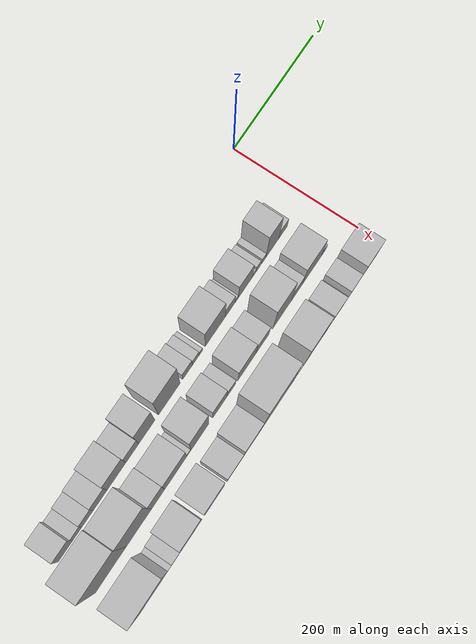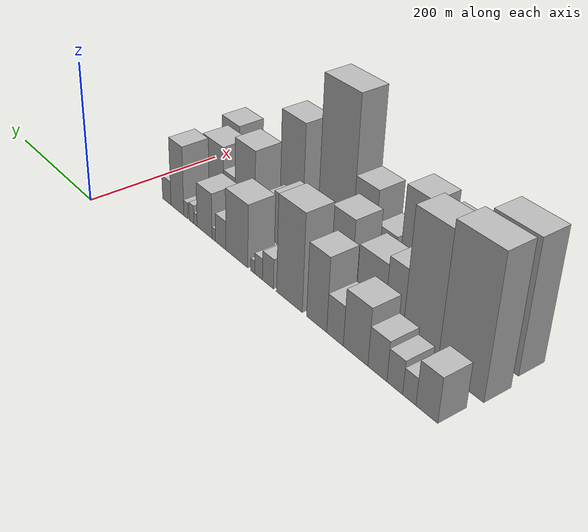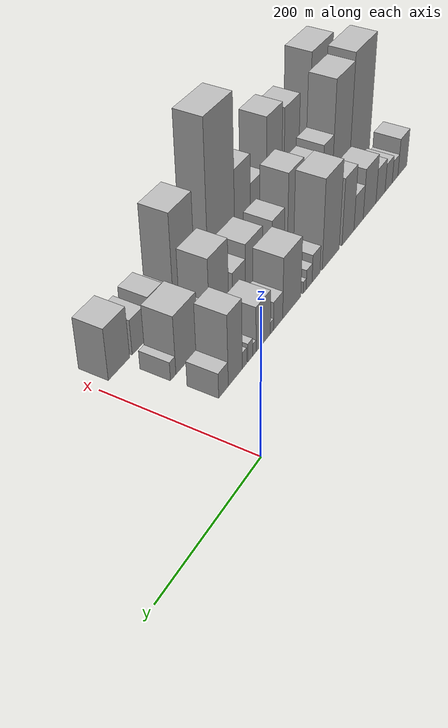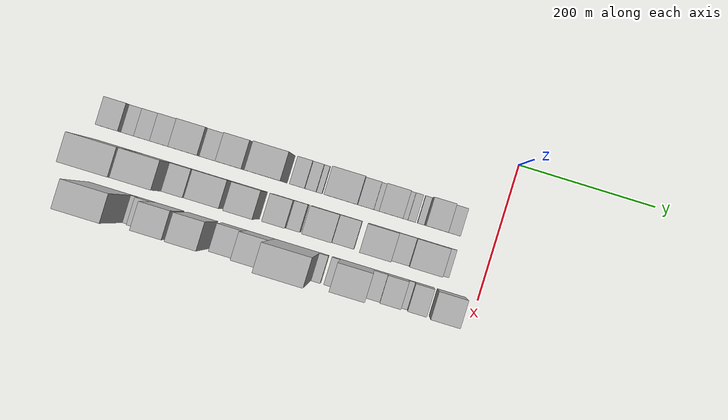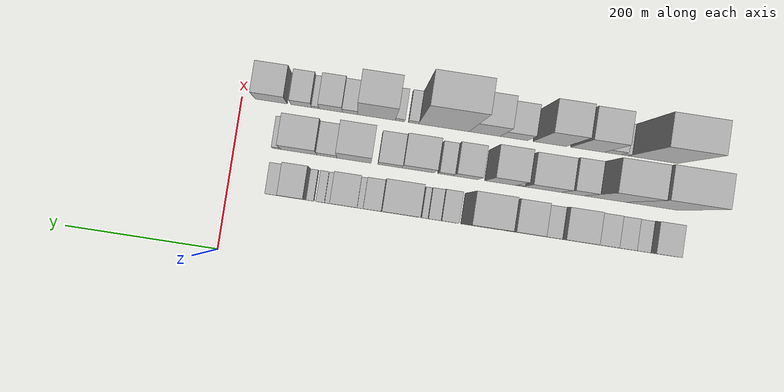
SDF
<sdf version="1.6">
 <world name="default">
  <model name="building_1">
   <static>1</static>
   <pose>100.0000 -558.9998 0 0.000000 0.000000 0.000000</pose>
   <link name="link">
    <pose>0 0 30.00 0 0 0</pose>
    <collision name="collision"><geometry><box><size>40.0000 32.0005 60.0000</size></box></geometry></collision>
    <visual name="visual">
     <cast_shadows>0</cast_shadows>
     <geometry><box><size>40.0000 32.0005 60.0000</size></box></geometry>
     <material>
      <script>
       <uri>model://HANNAS_wall/materials/scripts</uri>
       <uri>model://HANNAS_wall/materials/textures</uri>
       <name>vrc/HANNAS_wall</name>
      </script>
     </material>
    </visual>
   </link>
  </model>
  <model name="building_2">
   <static>1</static>
   <pose>100.0000 -533.0357 0 0.000000 0.000000 0.000000</pose>
   <link name="link">
    <pose>0 0 18.00 0 0 0</pose>
    <collision name="collision"><geometry><box><size>40.0000 19.9277 36.0000</size></box></geometry></collision>
    <visual name="visual">
     <cast_shadows>0</cast_shadows>
     <geometry><box><size>40.0000 19.9277 36.0000</size></box></geometry>
     <material>
      <script>
       <uri>model://HANNAS_wall/materials/scripts</uri>
       <uri>model://HANNAS_wall/materials/textures</uri>
       <name>vrc/HANNAS_wall</name>
      </script>
     </material>
    </visual>
   </link>
  </model>
  <model name="building_3">
   <static>1</static>
   <pose>100.0000 -510.8736 0 0.000000 0.000000 0.000000</pose>
   <link name="link">
    <pose>0 0 22.50 0 0 0</pose>
    <collision name="collision"><geometry><box><size>40.0000 24.3965 45.0000</size></box></geometry></collision>
    <visual name="visual">
     <cast_shadows>0</cast_shadows>
     <geometry><box><size>40.0000 24.3965 45.0000</size></box></geometry>
     <material>
      <script>
       <uri>model://HANNAS_wall/materials/scripts</uri>
       <uri>model://HANNAS_wall/materials/textures</uri>
       <name>vrc/HANNAS_wall</name>
      </script>
     </material>
    </visual>
   </link>
  </model>
  <model name="building_4">
   <static>1</static>
   <pose>100.0000 -483.5138 0 0.000000 0.000000 0.000000</pose>
   <link name="link">
    <pose>0 0 27.00 0 0 0</pose>
    <collision name="collision"><geometry><box><size>40.0000 30.3230 54.0000</size></box></geometry></collision>
    <visual name="visual">
     <cast_shadows>0</cast_shadows>
     <geometry><box><size>40.0000 30.3230 54.0000</size></box></geometry>
     <material>
      <script>
       <uri>model://HANNAS_wall/materials/scripts</uri>
       <uri>model://HANNAS_wall/materials/textures</uri>
       <name>vrc/HANNAS_wall</name>
      </script>
     </material>
    </visual>
   </link>
  </model>
  <model name="building_5">
   <static>1</static>
   <pose>100.0000 -447.7967 0 0.000000 0.000000 0.000000</pose>
   <link name="link">
    <pose>0 0 39.00 0 0 0</pose>
    <collision name="collision"><geometry><box><size>40.0000 41.1111 78.0000</size></box></geometry></collision>
    <visual name="visual">
     <cast_shadows>0</cast_shadows>
     <geometry><box><size>40.0000 41.1111 78.0000</size></box></geometry>
     <material>
      <script>
       <uri>model://HANNAS_wall/materials/scripts</uri>
       <uri>model://HANNAS_wall/materials/textures</uri>
       <name>vrc/HANNAS_wall</name>
      </script>
     </material>
    </visual>
   </link>
  </model>
  <model name="building_6">
   <static>1</static>
   <pose>100.0000 -412.8341 0 0.000000 0.000000 0.000000</pose>
   <link name="link">
    <pose>0 0 27.00 0 0 0</pose>
    <collision name="collision"><geometry><box><size>40.0000 28.8142 54.0000</size></box></geometry></collision>
    <visual name="visual">
     <cast_shadows>0</cast_shadows>
     <geometry><box><size>40.0000 28.8142 54.0000</size></box></geometry>
     <material>
      <script>
       <uri>model://HANNAS_wall/materials/scripts</uri>
       <uri>model://HANNAS_wall/materials/textures</uri>
       <name>vrc/HANNAS_wall</name>
      </script>
     </material>
    </visual>
   </link>
  </model>
  <model name="building_7">
   <static>1</static>
   <pose>100.0000 -380.3143 0 0.000000 0.000000 0.000000</pose>
   <link name="link">
    <pose>0 0 51.00 0 0 0</pose>
    <collision name="collision"><geometry><box><size>40.0000 36.2254 102.0000</size></box></geometry></collision>
    <visual name="visual">
     <cast_shadows>0</cast_shadows>
     <geometry><box><size>40.0000 36.2254 102.0000</size></box></geometry>
     <material>
      <script>
       <uri>model://HANNAS_wall/materials/scripts</uri>
       <uri>model://HANNAS_wall/materials/textures</uri>
       <name>vrc/HANNAS_wall</name>
      </script>
     </material>
    </visual>
   </link>
  </model>
  <model name="building_8">
   <static>1</static>
   <pose>100.0000 -329.6145 0 0.000000 0.000000 0.000000</pose>
   <link name="link">
    <pose>0 0 67.50 0 0 0</pose>
    <collision name="collision"><geometry><box><size>40.0000 49.1742 135.0000</size></box></geometry></collision>
    <visual name="visual">
     <cast_shadows>0</cast_shadows>
     <geometry><box><size>40.0000 49.1742 135.0000</size></box></geometry>
     <material>
      <script>
       <uri>model://HANNAS_wall/materials/scripts</uri>
       <uri>model://HANNAS_wall/materials/textures</uri>
       <name>vrc/HANNAS_wall</name>
      </script>
     </material>
    </visual>
   </link>
  </model>
  <model name="building_9">
   <static>1</static>
   <pose>100.0000 -288.0605 0 0.000000 0.000000 0.000000</pose>
   <link name="link">
    <pose>0 0 21.00 0 0 0</pose>
    <collision name="collision"><geometry><box><size>40.0000 21.9337 42.0000</size></box></geometry></collision>
    <visual name="visual">
     <cast_shadows>0</cast_shadows>
     <geometry><box><size>40.0000 21.9337 42.0000</size></box></geometry>
     <material>
      <script>
       <uri>model://HANNAS_wall/materials/scripts</uri>
       <uri>model://HANNAS_wall/materials/textures</uri>
       <name>vrc/HANNAS_wall</name>
      </script>
     </material>
    </visual>
   </link>
  </model>
  <model name="building_10">
   <static>1</static>
   <pose>100.0000 -269.0830 0 0.000000 0.000000 0.000000</pose>
   <link name="link">
    <pose>0 0 15.00 0 0 0</pose>
    <collision name="collision"><geometry><box><size>40.0000 16.0212 30.0000</size></box></geometry></collision>
    <visual name="visual">
     <cast_shadows>0</cast_shadows>
     <geometry><box><size>40.0000 16.0212 30.0000</size></box></geometry>
     <material>
      <script>
       <uri>model://HANNAS_wall/materials/scripts</uri>
       <uri>model://HANNAS_wall/materials/textures</uri>
       <name>vrc/HANNAS_wall</name>
      </script>
     </material>
    </visual>
   </link>
  </model>
  <model name="building_11">
   <static>1</static>
   <pose>100.0000 -257.0660 0 0.000000 0.000000 0.000000</pose>
   <link name="link">
    <pose>0 0 9.00 0 0 0</pose>
    <collision name="collision"><geometry><box><size>40.0000 8.0128 18.0000</size></box></geometry></collision>
    <visual name="visual">
     <cast_shadows>0</cast_shadows>
     <geometry><box><size>40.0000 8.0128 18.0000</size></box></geometry>
     <material>
      <script>
       <uri>model://HANNAS_wall/materials/scripts</uri>
       <uri>model://HANNAS_wall/materials/textures</uri>
       <name>vrc/HANNAS_wall</name>
      </script>
     </material>
    </visual>
   </link>
  </model>
  <model name="building_12">
   <static>1</static>
   <pose>100.0000 -223.5987 0 0.000000 0.000000 0.000000</pose>
   <link name="link">
    <pose>0 0 45.00 0 0 0</pose>
    <collision name="collision"><geometry><box><size>40.0000 46.9219 90.0000</size></box></geometry></collision>
    <visual name="visual">
     <cast_shadows>0</cast_shadows>
     <geometry><box><size>40.0000 46.9219 90.0000</size></box></geometry>
     <material>
      <script>
       <uri>model://HANNAS_wall/materials/scripts</uri>
       <uri>model://HANNAS_wall/materials/textures</uri>
       <name>vrc/HANNAS_wall</name>
      </script>
     </material>
    </visual>
   </link>
  </model>
  <model name="building_13">
   <static>1</static>
   <pose>100.0000 -188.6355 0 0.000000 0.000000 0.000000</pose>
   <link name="link">
    <pose>0 0 21.00 0 0 0</pose>
    <collision name="collision"><geometry><box><size>40.0000 23.0045 42.0000</size></box></geometry></collision>
    <visual name="visual">
     <cast_shadows>0</cast_shadows>
     <geometry><box><size>40.0000 23.0045 42.0000</size></box></geometry>
     <material>
      <script>
       <uri>model://HANNAS_wall/materials/scripts</uri>
       <uri>model://HANNAS_wall/materials/textures</uri>
       <name>vrc/HANNAS_wall</name>
      </script>
     </material>
    </visual>
   </link>
  </model>
  <model name="building_14">
   <static>1</static>
   <pose>100.0000 -173.3372 0 0.000000 0.000000 0.000000</pose>
   <link name="link">
    <pose>0 0 9.00 0 0 0</pose>
    <collision name="collision"><geometry><box><size>40.0000 7.5920 18.0000</size></box></geometry></collision>
    <visual name="visual">
     <cast_shadows>0</cast_shadows>
     <geometry><box><size>40.0000 7.5920 18.0000</size></box></geometry>
     <material>
      <script>
       <uri>model://HANNAS_wall/materials/scripts</uri>
       <uri>model://HANNAS_wall/materials/textures</uri>
       <name>vrc/HANNAS_wall</name>
      </script>
     </material>
    </visual>
   </link>
  </model>
  <model name="building_15">
   <static>1</static>
   <pose>100.0000 -152.3897 0 0.000000 0.000000 0.000000</pose>
   <link name="link">
    <pose>0 0 33.00 0 0 0</pose>
    <collision name="collision"><geometry><box><size>40.0000 34.3029 66.0000</size></box></geometry></collision>
    <visual name="visual">
     <cast_shadows>0</cast_shadows>
     <geometry><box><size>40.0000 34.3029 66.0000</size></box></geometry>
     <material>
      <script>
       <uri>model://HANNAS_wall/materials/scripts</uri>
       <uri>model://HANNAS_wall/materials/textures</uri>
       <name>vrc/HANNAS_wall</name>
      </script>
     </material>
    </visual>
   </link>
  </model>
  <model name="building_16">
   <static>1</static>
   <pose>100.0000 -131.3970 0 0.000000 0.000000 0.000000</pose>
   <link name="link">
    <pose>0 0 9.00 0 0 0</pose>
    <collision name="collision"><geometry><box><size>40.0000 7.6826 18.0000</size></box></geometry></collision>
    <visual name="visual">
     <cast_shadows>0</cast_shadows>
     <geometry><box><size>40.0000 7.6826 18.0000</size></box></geometry>
     <material>
      <script>
       <uri>model://HANNAS_wall/materials/scripts</uri>
       <uri>model://HANNAS_wall/materials/textures</uri>
       <name>vrc/HANNAS_wall</name>
      </script>
     </material>
    </visual>
   </link>
  </model>
  <model name="building_17">
   <static>1</static>
   <pose>100.0000 -121.9993 0 0.000000 0.000000 0.000000</pose>
   <link name="link">
    <pose>0 0 13.50 0 0 0</pose>
    <collision name="collision"><geometry><box><size>40.0000 11.1128 27.0000</size></box></geometry></collision>
    <visual name="visual">
     <cast_shadows>0</cast_shadows>
     <geometry><box><size>40.0000 11.1128 27.0000</size></box></geometry>
     <material>
      <script>
       <uri>model://HANNAS_wall/materials/scripts</uri>
       <uri>model://HANNAS_wall/materials/textures</uri>
       <name>vrc/HANNAS_wall</name>
      </script>
     </material>
    </visual>
   </link>
  </model>
  <model name="building_18">
   <static>1</static>
   <pose>100.0000 -108.5915 0 0.000000 0.000000 0.000000</pose>
   <link name="link">
    <pose>0 0 12.00 0 0 0</pose>
    <collision name="collision"><geometry><box><size>40.0000 9.7029 24.0000</size></box></geometry></collision>
    <visual name="visual">
     <cast_shadows>0</cast_shadows>
     <geometry><box><size>40.0000 9.7029 24.0000</size></box></geometry>
     <material>
      <script>
       <uri>model://HANNAS_wall/materials/scripts</uri>
       <uri>model://HANNAS_wall/materials/textures</uri>
       <name>vrc/HANNAS_wall</name>
      </script>
     </material>
    </visual>
   </link>
  </model>
  <model name="building_19">
   <static>1</static>
   <pose>100.0000 -88.0765 0 0.000000 0.000000 0.000000</pose>
   <link name="link">
    <pose>0 0 51.00 0 0 0</pose>
    <collision name="collision"><geometry><box><size>40.0000 31.3270 102.0000</size></box></geometry></collision>
    <visual name="visual">
     <cast_shadows>0</cast_shadows>
     <geometry><box><size>40.0000 31.3270 102.0000</size></box></geometry>
     <material>
      <script>
       <uri>model://HANNAS_wall/materials/scripts</uri>
       <uri>model://HANNAS_wall/materials/textures</uri>
       <name>vrc/HANNAS_wall</name>
      </script>
     </material>
    </visual>
   </link>
  </model>
  <model name="building_20">
   <static>1</static>
   <pose>100.0000 -62.0371 0 0.000000 0.000000 0.000000</pose>
   <link name="link">
    <pose>0 0 18.00 0 0 0</pose>
    <collision name="collision"><geometry><box><size>40.0000 20.7519 36.0000</size></box></geometry></collision>
    <visual name="visual">
     <cast_shadows>0</cast_shadows>
     <geometry><box><size>40.0000 20.7519 36.0000</size></box></geometry>
     <material>
      <script>
       <uri>model://HANNAS_wall/materials/scripts</uri>
       <uri>model://HANNAS_wall/materials/textures</uri>
       <name>vrc/HANNAS_wall</name>
      </script>
     </material>
    </visual>
   </link>
  </model>
  <model name="building_36">
   <static>1</static>
   <pose>160.0000 -546.0271 0 0.000000 0.000000 0.000000</pose>
   <link name="link">
    <pose>0 0 94.50 0 0 0</pose>
    <collision name="collision"><geometry><box><size>40.0000 67.9459 189.0000</size></box></geometry></collision>
    <visual name="visual">
     <cast_shadows>0</cast_shadows>
     <geometry><box><size>40.0000 67.9459 189.0000</size></box></geometry>
     <material>
      <script>
       <uri>model://HANNAS_wall/materials/scripts</uri>
       <uri>model://HANNAS_wall/materials/textures</uri>
       <name>vrc/HANNAS_wall</name>
      </script>
     </material>
    </visual>
   </link>
  </model>
  <model name="building_37">
   <static>1</static>
   <pose>160.0000 -484.2966 0 0.000000 0.000000 0.000000</pose>
   <link name="link">
    <pose>0 0 88.50 0 0 0</pose>
    <collision name="collision"><geometry><box><size>40.0000 55.5150 177.0000</size></box></geometry></collision>
    <visual name="visual">
     <cast_shadows>0</cast_shadows>
     <geometry><box><size>40.0000 55.5150 177.0000</size></box></geometry>
     <material>
      <script>
       <uri>model://HANNAS_wall/materials/scripts</uri>
       <uri>model://HANNAS_wall/materials/textures</uri>
       <name>vrc/HANNAS_wall</name>
      </script>
     </material>
    </visual>
   </link>
  </model>
  <model name="building_38">
   <static>1</static>
   <pose>160.0000 -441.6008 0 0.000000 0.000000 0.000000</pose>
   <link name="link">
    <pose>0 0 48.00 0 0 0</pose>
    <collision name="collision"><geometry><box><size>40.0000 29.8766 96.0000</size></box></geometry></collision>
    <visual name="visual">
     <cast_shadows>0</cast_shadows>
     <geometry><box><size>40.0000 29.8766 96.0000</size></box></geometry>
     <material>
      <script>
       <uri>model://HANNAS_wall/materials/scripts</uri>
       <uri>model://HANNAS_wall/materials/textures</uri>
       <name>vrc/HANNAS_wall</name>
      </script>
     </material>
    </visual>
   </link>
  </model>
  <model name="building_39">
   <static>1</static>
   <pose>160.0000 -402.0864 0 0.000000 0.000000 0.000000</pose>
   <link name="link">
    <pose>0 0 42.00 0 0 0</pose>
    <collision name="collision"><geometry><box><size>40.0000 49.1523 84.0000</size></box></geometry></collision>
    <visual name="visual">
     <cast_shadows>0</cast_shadows>
     <geometry><box><size>40.0000 49.1523 84.0000</size></box></geometry>
     <material>
      <script>
       <uri>model://HANNAS_wall/materials/scripts</uri>
       <uri>model://HANNAS_wall/materials/textures</uri>
       <name>vrc/HANNAS_wall</name>
      </script>
     </material>
    </visual>
   </link>
  </model>
  <model name="building_40">
   <static>1</static>
   <pose>160.0000 -372.9506 0 0.000000 0.000000 0.000000</pose>
   <link name="link">
    <pose>0 0 10.50 0 0 0</pose>
    <collision name="collision"><geometry><box><size>40.0000 9.1191 21.0000</size></box></geometry></collision>
    <visual name="visual">
     <cast_shadows>0</cast_shadows>
     <geometry><box><size>40.0000 9.1191 21.0000</size></box></geometry>
     <material>
      <script>
       <uri>model://HANNAS_wall/materials/scripts</uri>
       <uri>model://HANNAS_wall/materials/textures</uri>
       <name>vrc/HANNAS_wall</name>
      </script>
     </material>
    </visual>
   </link>
  </model>
  <model name="building_41">
   <static>1</static>
   <pose>160.0000 -347.9880 0 0.000000 0.000000 0.000000</pose>
   <link name="link">
    <pose>0 0 55.50 0 0 0</pose>
    <collision name="collision"><geometry><box><size>40.0000 40.8061 111.0000</size></box></geometry></collision>
    <visual name="visual">
     <cast_shadows>0</cast_shadows>
     <geometry><box><size>40.0000 40.8061 111.0000</size></box></geometry>
     <material>
      <script>
       <uri>model://HANNAS_wall/materials/scripts</uri>
       <uri>model://HANNAS_wall/materials/textures</uri>
       <name>vrc/HANNAS_wall</name>
      </script>
     </material>
    </visual>
   </link>
  </model>
  <model name="building_42">
   <static>1</static>
   <pose>160.0000 -302.0766 0 0.000000 0.000000 0.000000</pose>
   <link name="link">
    <pose>0 0 33.00 0 0 0</pose>
    <collision name="collision"><geometry><box><size>40.0000 33.0168 66.0000</size></box></geometry></collision>
    <visual name="visual">
     <cast_shadows>0</cast_shadows>
     <geometry><box><size>40.0000 33.0168 66.0000</size></box></geometry>
     <material>
      <script>
       <uri>model://HANNAS_wall/materials/scripts</uri>
       <uri>model://HANNAS_wall/materials/textures</uri>
       <name>vrc/HANNAS_wall</name>
      </script>
     </material>
    </visual>
   </link>
  </model>
  <model name="building_43">
   <static>1</static>
   <pose>160.0000 -275.7800 0 0.000000 0.000000 0.000000</pose>
   <link name="link">
    <pose>0 0 19.50 0 0 0</pose>
    <collision name="collision"><geometry><box><size>40.0000 19.5763 39.0000</size></box></geometry></collision>
    <visual name="visual">
     <cast_shadows>0</cast_shadows>
     <geometry><box><size>40.0000 19.5763 39.0000</size></box></geometry>
     <material>
      <script>
       <uri>model://HANNAS_wall/materials/scripts</uri>
       <uri>model://HANNAS_wall/materials/textures</uri>
       <name>vrc/HANNAS_wall</name>
      </script>
     </material>
    </visual>
   </link>
  </model>
  <model name="building_44">
   <static>1</static>
   <pose>160.0000 -239.8060 0 0.000000 0.000000 0.000000</pose>
   <link name="link">
    <pose>0 0 37.50 0 0 0</pose>
    <collision name="collision"><geometry><box><size>40.0000 42.3719 75.0000</size></box></geometry></collision>
    <visual name="visual">
     <cast_shadows>0</cast_shadows>
     <geometry><box><size>40.0000 42.3719 75.0000</size></box></geometry>
     <material>
      <script>
       <uri>model://HANNAS_wall/materials/scripts</uri>
       <uri>model://HANNAS_wall/materials/textures</uri>
       <name>vrc/HANNAS_wall</name>
      </script>
     </material>
    </visual>
   </link>
  </model>
  <model name="building_45">
   <static>1</static>
   <pose>160.0000 -203.0431 0 0.000000 0.000000 0.000000</pose>
   <link name="link">
    <pose>0 0 27.00 0 0 0</pose>
    <collision name="collision"><geometry><box><size>40.0000 31.1538 54.0000</size></box></geometry></collision>
    <visual name="visual">
     <cast_shadows>0</cast_shadows>
     <geometry><box><size>40.0000 31.1538 54.0000</size></box></geometry>
     <material>
      <script>
       <uri>model://HANNAS_wall/materials/scripts</uri>
       <uri>model://HANNAS_wall/materials/textures</uri>
       <name>vrc/HANNAS_wall</name>
      </script>
     </material>
    </visual>
   </link>
  </model>
  <model name="building_46">
   <static>1</static>
   <pose>160.0000 -156.4165 0 0.000000 0.000000 0.000000</pose>
   <link name="link">
    <pose>0 0 55.50 0 0 0</pose>
    <collision name="collision"><geometry><box><size>40.0000 44.0994 111.0000</size></box></geometry></collision>
    <visual name="visual">
     <cast_shadows>0</cast_shadows>
     <geometry><box><size>40.0000 44.0994 111.0000</size></box></geometry>
     <material>
      <script>
       <uri>model://HANNAS_wall/materials/scripts</uri>
       <uri>model://HANNAS_wall/materials/textures</uri>
       <name>vrc/HANNAS_wall</name>
      </script>
     </material>
    </visual>
   </link>
  </model>
  <model name="building_47">
   <static>1</static>
   <pose>160.0000 -121.1956 0 0.000000 0.000000 0.000000</pose>
   <link name="link">
    <pose>0 0 25.50 0 0 0</pose>
    <collision name="collision"><geometry><box><size>40.0000 26.3425 51.0000</size></box></geometry></collision>
    <visual name="visual">
     <cast_shadows>0</cast_shadows>
     <geometry><box><size>40.0000 26.3425 51.0000</size></box></geometry>
     <material>
      <script>
       <uri>model://HANNAS_wall/materials/scripts</uri>
       <uri>model://HANNAS_wall/materials/textures</uri>
       <name>vrc/HANNAS_wall</name>
      </script>
     </material>
    </visual>
   </link>
  </model>
  <model name="building_48">
   <static>1</static>
   <pose>160.0000 -84.4922 0 0.000000 0.000000 0.000000</pose>
   <link name="link">
    <pose>0 0 42.00 0 0 0</pose>
    <collision name="collision"><geometry><box><size>40.0000 47.0642 84.0000</size></box></geometry></collision>
    <visual name="visual">
     <cast_shadows>0</cast_shadows>
     <geometry><box><size>40.0000 47.0642 84.0000</size></box></geometry>
     <material>
      <script>
       <uri>model://HANNAS_wall/materials/scripts</uri>
       <uri>model://HANNAS_wall/materials/textures</uri>
       <name>vrc/HANNAS_wall</name>
      </script>
     </material>
    </visual>
   </link>
  </model>
  <model name="building_49">
   <static>1</static>
   <pose>160.0000 -55.3131 0 0.000000 0.000000 0.000000</pose>
   <link name="link">
    <pose>0 0 13.50 0 0 0</pose>
    <collision name="collision"><geometry><box><size>40.0000 11.2942 27.0000</size></box></geometry></collision>
    <visual name="visual">
     <cast_shadows>0</cast_shadows>
     <geometry><box><size>40.0000 11.2942 27.0000</size></box></geometry>
     <material>
      <script>
       <uri>model://HANNAS_wall/materials/scripts</uri>
       <uri>model://HANNAS_wall/materials/textures</uri>
       <name>vrc/HANNAS_wall</name>
      </script>
     </material>
    </visual>
   </link>
  </model>
  <model name="building_67">
   <static>1</static>
   <pose>220.0000 -539.4985 0 0.000000 0.000000 0.000000</pose>
   <link name="link">
    <pose>0 0 88.50 0 0 0</pose>
    <collision name="collision"><geometry><box><size>40.0000 65.0030 177.0000</size></box></geometry></collision>
    <visual name="visual">
     <cast_shadows>0</cast_shadows>
     <geometry><box><size>40.0000 65.0030 177.0000</size></box></geometry>
     <material>
      <script>
       <uri>model://HANNAS_wall/materials/scripts</uri>
       <uri>model://HANNAS_wall/materials/textures</uri>
       <name>vrc/HANNAS_wall</name>
      </script>
     </material>
    </visual>
   </link>
  </model>
  <model name="building_68">
   <static>1</static>
   <pose>220.0000 -502.1473 0 0.000000 0.000000 0.000000</pose>
   <link name="link">
    <pose>0 0 10.50 0 0 0</pose>
    <collision name="collision"><geometry><box><size>40.0000 9.6995 21.0000</size></box></geometry></collision>
    <visual name="visual">
     <cast_shadows>0</cast_shadows>
     <geometry><box><size>40.0000 9.6995 21.0000</size></box></geometry>
     <material>
      <script>
       <uri>model://HANNAS_wall/materials/scripts</uri>
       <uri>model://HANNAS_wall/materials/textures</uri>
       <name>vrc/HANNAS_wall</name>
      </script>
     </material>
    </visual>
   </link>
  </model>
  <model name="building_69">
   <static>1</static>
   <pose>220.0000 -486.3223 0 0.000000 0.000000 0.000000</pose>
   <link name="link">
    <pose>0 0 21.00 0 0 0</pose>
    <collision name="collision"><geometry><box><size>40.0000 21.9504 42.0000</size></box></geometry></collision>
    <visual name="visual">
     <cast_shadows>0</cast_shadows>
     <geometry><box><size>40.0000 21.9504 42.0000</size></box></geometry>
     <material>
      <script>
       <uri>model://HANNAS_wall/materials/scripts</uri>
       <uri>model://HANNAS_wall/materials/textures</uri>
       <name>vrc/HANNAS_wall</name>
      </script>
     </material>
    </visual>
   </link>
  </model>
  <model name="building_70">
   <static>1</static>
   <pose>220.0000 -453.5534 0 0.000000 0.000000 0.000000</pose>
   <link name="link">
    <pose>0 0 66.00 0 0 0</pose>
    <collision name="collision"><geometry><box><size>40.0000 43.5875 132.0000</size></box></geometry></collision>
    <visual name="visual">
     <cast_shadows>0</cast_shadows>
     <geometry><box><size>40.0000 43.5875 132.0000</size></box></geometry>
     <material>
      <script>
       <uri>model://HANNAS_wall/materials/scripts</uri>
       <uri>model://HANNAS_wall/materials/textures</uri>
       <name>vrc/HANNAS_wall</name>
      </script>
     </material>
    </visual>
   </link>
  </model>
  <model name="building_71">
   <static>1</static>
   <pose>220.0000 -404.1030 0 0.000000 0.000000 0.000000</pose>
   <link name="link">
    <pose>0 0 72.00 0 0 0</pose>
    <collision name="collision"><geometry><box><size>40.0000 43.3131 144.0000</size></box></geometry></collision>
    <visual name="visual">
     <cast_shadows>0</cast_shadows>
     <geometry><box><size>40.0000 43.3131 144.0000</size></box></geometry>
     <material>
      <script>
       <uri>model://HANNAS_wall/materials/scripts</uri>
       <uri>model://HANNAS_wall/materials/textures</uri>
       <name>vrc/HANNAS_wall</name>
      </script>
     </material>
    </visual>
   </link>
  </model>
  <model name="building_72">
   <static>1</static>
   <pose>220.0000 -357.3500 0 0.000000 0.000000 0.000000</pose>
   <link name="link">
    <pose>0 0 34.50 0 0 0</pose>
    <collision name="collision"><geometry><box><size>40.0000 36.1931 69.0000</size></box></geometry></collision>
    <visual name="visual">
     <cast_shadows>0</cast_shadows>
     <geometry><box><size>40.0000 36.1931 69.0000</size></box></geometry>
     <material>
      <script>
       <uri>model://HANNAS_wall/materials/scripts</uri>
       <uri>model://HANNAS_wall/materials/textures</uri>
       <name>vrc/HANNAS_wall</name>
      </script>
     </material>
    </visual>
   </link>
  </model>
  <model name="building_73">
   <static>1</static>
   <pose>220.0000 -318.7984 0 0.000000 0.000000 0.000000</pose>
   <link name="link">
    <pose>0 0 57.00 0 0 0</pose>
    <collision name="collision"><geometry><box><size>40.0000 40.9100 114.0000</size></box></geometry></collision>
    <visual name="visual">
     <cast_shadows>0</cast_shadows>
     <geometry><box><size>40.0000 40.9100 114.0000</size></box></geometry>
     <material>
      <script>
       <uri>model://HANNAS_wall/materials/scripts</uri>
       <uri>model://HANNAS_wall/materials/textures</uri>
       <name>vrc/HANNAS_wall</name>
      </script>
     </material>
    </visual>
   </link>
  </model>
  <model name="building_74">
   <static>1</static>
   <pose>220.0000 -265.0286 0 0.000000 0.000000 0.000000</pose>
   <link name="link">
    <pose>0 0 111.00 0 0 0</pose>
    <collision name="collision"><geometry><box><size>40.0000 66.6296 222.0000</size></box></geometry></collision>
    <visual name="visual">
     <cast_shadows>0</cast_shadows>
     <geometry><box><size>40.0000 66.6296 222.0000</size></box></geometry>
     <material>
      <script>
       <uri>model://HANNAS_wall/materials/scripts</uri>
       <uri>model://HANNAS_wall/materials/textures</uri>
       <name>vrc/HANNAS_wall</name>
      </script>
     </material>
    </visual>
   </link>
  </model>
  <model name="building_75">
   <static>1</static>
   <pose>220.0000 -225.0602 0 0.000000 0.000000 0.000000</pose>
   <link name="link">
    <pose>0 0 13.50 0 0 0</pose>
    <collision name="collision"><geometry><box><size>40.0000 13.3073 27.0000</size></box></geometry></collision>
    <visual name="visual">
     <cast_shadows>0</cast_shadows>
     <geometry><box><size>40.0000 13.3073 27.0000</size></box></geometry>
     <material>
      <script>
       <uri>model://HANNAS_wall/materials/scripts</uri>
       <uri>model://HANNAS_wall/materials/textures</uri>
       <name>vrc/HANNAS_wall</name>
      </script>
     </material>
    </visual>
   </link>
  </model>
  <model name="building_76">
   <static>1</static>
   <pose>220.0000 -207.2946 0 0.000000 0.000000 0.000000</pose>
   <link name="link">
    <pose>0 0 13.50 0 0 0</pose>
    <collision name="collision"><geometry><box><size>40.0000 12.2238 27.0000</size></box></geometry></collision>
    <visual name="visual">
     <cast_shadows>0</cast_shadows>
     <geometry><box><size>40.0000 12.2238 27.0000</size></box></geometry>
     <material>
      <script>
       <uri>model://HANNAS_wall/materials/scripts</uri>
       <uri>model://HANNAS_wall/materials/textures</uri>
       <name>vrc/HANNAS_wall</name>
      </script>
     </material>
    </visual>
   </link>
  </model>
  <model name="building_77">
   <static>1</static>
   <pose>220.0000 -176.6967 0 0.000000 0.000000 0.000000</pose>
   <link name="link">
    <pose>0 0 70.50 0 0 0</pose>
    <collision name="collision"><geometry><box><size>40.0000 48.9720 141.0000</size></box></geometry></collision>
    <visual name="visual">
     <cast_shadows>0</cast_shadows>
     <geometry><box><size>40.0000 48.9720 141.0000</size></box></geometry>
     <material>
      <script>
       <uri>model://HANNAS_wall/materials/scripts</uri>
       <uri>model://HANNAS_wall/materials/textures</uri>
       <name>vrc/HANNAS_wall</name>
      </script>
     </material>
    </visual>
   </link>
  </model>
  <model name="building_78">
   <static>1</static>
   <pose>220.0000 -141.9486 0 0.000000 0.000000 0.000000</pose>
   <link name="link">
    <pose>0 0 19.50 0 0 0</pose>
    <collision name="collision"><geometry><box><size>40.0000 20.5241 39.0000</size></box></geometry></collision>
    <visual name="visual">
     <cast_shadows>0</cast_shadows>
     <geometry><box><size>40.0000 20.5241 39.0000</size></box></geometry>
     <material>
      <script>
       <uri>model://HANNAS_wall/materials/scripts</uri>
       <uri>model://HANNAS_wall/materials/textures</uri>
       <name>vrc/HANNAS_wall</name>
      </script>
     </material>
    </visual>
   </link>
  </model>
  <model name="building_79">
   <static>1</static>
   <pose>220.0000 -116.5460 0 0.000000 0.000000 0.000000</pose>
   <link name="link">
    <pose>0 0 28.50 0 0 0</pose>
    <collision name="collision"><geometry><box><size>40.0000 30.2813 57.0000</size></box></geometry></collision>
    <visual name="visual">
     <cast_shadows>0</cast_shadows>
     <geometry><box><size>40.0000 30.2813 57.0000</size></box></geometry>
     <material>
      <script>
       <uri>model://HANNAS_wall/materials/scripts</uri>
       <uri>model://HANNAS_wall/materials/textures</uri>
       <name>vrc/HANNAS_wall</name>
      </script>
     </material>
    </visual>
   </link>
  </model>
  <model name="building_80">
   <static>1</static>
   <pose>220.0000 -96.5317 0 0.000000 0.000000 0.000000</pose>
   <link name="link">
    <pose>0 0 10.50 0 0 0</pose>
    <collision name="collision"><geometry><box><size>40.0000 9.7473 21.0000</size></box></geometry></collision>
    <visual name="visual">
     <cast_shadows>0</cast_shadows>
     <geometry><box><size>40.0000 9.7473 21.0000</size></box></geometry>
     <material>
      <script>
       <uri>model://HANNAS_wall/materials/scripts</uri>
       <uri>model://HANNAS_wall/materials/textures</uri>
       <name>vrc/HANNAS_wall</name>
      </script>
     </material>
    </visual>
   </link>
  </model>
  <model name="building_81">
   <static>1</static>
   <pose>220.0000 -77.9969 0 0.000000 0.000000 0.000000</pose>
   <link name="link">
    <pose>0 0 25.50 0 0 0</pose>
    <collision name="collision"><geometry><box><size>40.0000 27.3222 51.0000</size></box></geometry></collision>
    <visual name="visual">
     <cast_shadows>0</cast_shadows>
     <geometry><box><size>40.0000 27.3222 51.0000</size></box></geometry>
     <material>
      <script>
       <uri>model://HANNAS_wall/materials/scripts</uri>
       <uri>model://HANNAS_wall/materials/textures</uri>
       <name>vrc/HANNAS_wall</name>
      </script>
     </material>
    </visual>
   </link>
  </model>
  <model name="building_82">
   <static>1</static>
   <pose>220.0000 -38.3323 0 0.000000 0.000000 0.000000</pose>
   <link name="link">
    <pose>0 0 37.50 0 0 0</pose>
    <collision name="collision"><geometry><box><size>40.0000 42.0070 75.0000</size></box></geometry></collision>
    <visual name="visual">
     <cast_shadows>0</cast_shadows>
     <geometry><box><size>40.0000 42.0070 75.0000</size></box></geometry>
     <material>
      <script>
       <uri>model://HANNAS_wall/materials/scripts</uri>
       <uri>model://HANNAS_wall/materials/textures</uri>
       <name>vrc/HANNAS_wall</name>
      </script>
     </material>
    </visual>
   </link>
  </model>
 </world>
</sdf>
